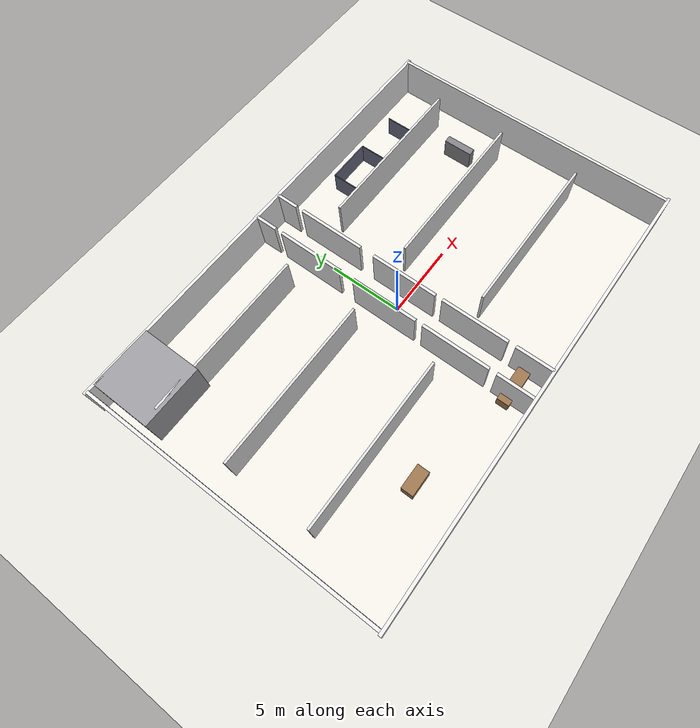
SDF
<?xml version="1.0"?>
<sdf version="1.11">
  <world name="office_floor">

    <!-- ── Physics ─────────────────────────────────────────────────────── -->
    <physics name="1ms" type="ignored">
      <max_step_size>0.001</max_step_size>
      <real_time_factor>1.0</real_time_factor>
    </physics>

    <!-- ── System plugins ──────────────────────────────────────────────── -->
    <plugin filename="gz-sim-physics-system"
            name="gz::sim::systems::Physics"/>
    <plugin filename="gz-sim-sensors-system"
            name="gz::sim::systems::Sensors">
      <render_engine>ogre2</render_engine>
    </plugin>
    <plugin filename="gz-sim-scene-broadcaster-system"
            name="gz::sim::systems::SceneBroadcaster"/>
    <plugin filename="gz-sim-user-commands-system"
            name="gz::sim::systems::UserCommands"/>
    <plugin filename="gz-sim-imu-system"
            name="gz::sim::systems::Imu"/>

    <!-- ── Lighting — office ceiling lights ────────────────────────────── -->
    <light name="ceiling_main" type="directional">
      <cast_shadows>false</cast_shadows>
      <pose>0 0 5 0 0 0</pose>
      <diffuse>0.95 0.95 0.95 1</diffuse>
      <specular>0.3 0.3 0.3 1</specular>
      <direction>0 0 -1</direction>
    </light>
    <light name="ceiling_north" type="directional">
      <cast_shadows>false</cast_shadows>
      <pose>0 8 5 0 0 0</pose>
      <diffuse>0.80 0.80 0.80 1</diffuse>
      <specular>0.1 0.1 0.1 1</specular>
      <direction>0 0 -1</direction>
    </light>
    <light name="ceiling_south" type="directional">
      <cast_shadows>false</cast_shadows>
      <pose>0 -8 5 0 0 0</pose>
      <diffuse>0.80 0.80 0.80 1</diffuse>
      <specular>0.1 0.1 0.1 1</specular>
      <direction>0 0 -1</direction>
    </light>

    <!-- ── Ground plane ─────────────────────────────────────────────────── -->
    <model name="ground_plane">
      <static>true</static>
      <link name="link">
        <collision name="collision">
          <geometry><plane><normal>0 0 1</normal><size>100 100</size></plane></geometry>
        </collision>
        <visual name="visual">
          <geometry><plane><normal>0 0 1</normal><size>100 100</size></plane></geometry>
          <material>
            <ambient>0.88 0.87 0.85 1</ambient>
            <diffuse>0.88 0.87 0.85 1</diffuse>
          </material>
        </visual>
      </link>
    </model>

    <!-- Office floor tile overlay (30 × 20 m, light-tile look) -->
    <model name="office_floor">
      <static>true</static>
      <pose>0 0 0.001 0 0 0</pose>
      <link name="link">
        <visual name="visual">
          <geometry><box><size>30 20 0.001</size></box></geometry>
          <material>
            <ambient>0.92 0.91 0.88 1</ambient>
            <diffuse>0.92 0.91 0.88 1</diffuse>
            <specular>0.08 0.08 0.08 1</specular>
          </material>
        </visual>
      </link>
    </model>

    <model name="wall_north">
      <static>true</static>
      <pose>0 10 1.4 0 0 0</pose>
      <link name="link">
        <collision name="collision">
          <geometry><box><size>30.4 0.2 2.8</size></box></geometry>
        </collision>
        <visual name="visual">
          <geometry><box><size>30.4 0.2 2.8</size></box></geometry>
          <material><ambient>0.90 0.90 0.90 1</ambient><diffuse>0.90 0.90 0.90 1</diffuse></material>
        </visual>
      </link>
    </model>

    <model name="wall_south">
      <static>true</static>
      <pose>0 -10 1.4 0 0 0</pose>
      <link name="link">
        <collision name="collision">
          <geometry><box><size>30.4 0.2 2.8</size></box></geometry>
        </collision>
        <visual name="visual">
          <geometry><box><size>30.4 0.2 2.8</size></box></geometry>
          <material><ambient>0.90 0.90 0.90 1</ambient><diffuse>0.90 0.90 0.90 1</diffuse></material>
        </visual>
      </link>
    </model>

    <model name="wall_east">
      <static>true</static>
      <pose>15 0 1.4 0 0 0</pose>
      <link name="link">
        <collision name="collision">
          <geometry><box><size>0.2 20.0 2.8</size></box></geometry>
        </collision>
        <visual name="visual">
          <geometry><box><size>0.2 20.0 2.8</size></box></geometry>
          <material><ambient>0.90 0.90 0.90 1</ambient><diffuse>0.90 0.90 0.90 1</diffuse></material>
        </visual>
      </link>
    </model>

    <model name="wall_west">
      <static>true</static>
      <pose>-15 0 1.4 0 0 0</pose>
      <link name="link">
        <collision name="collision">
          <geometry><box><size>0.2 20.0 2.8</size></box></geometry>
        </collision>
        <visual name="visual">
          <geometry><box><size>0.2 20.0 2.8</size></box></geometry>
          <material><ambient>0.90 0.90 0.90 1</ambient><diffuse>0.90 0.90 0.90 1</diffuse></material>
        </visual>
      </link>
    </model>

    <model name="west_hall_wall_1"><static>true</static><pose>-1.0 -8.75 1.4 0 0 0</pose>
      <link name="link">
        <collision name="collision"><geometry><box><size>0.2 2.5 2.8</size></box></geometry></collision>
        <visual name="visual"><geometry><box><size>0.2 2.5 2.8</size></box></geometry>
          <material><ambient>0.88 0.88 0.88 1</ambient><diffuse>0.88 0.88 0.88 1</diffuse></material></visual>
      </link>
    </model>
    <model name="west_hall_wall_2"><static>true</static><pose>-1.0 -4.75 1.4 0 0 0</pose>
      <link name="link">
        <collision name="collision"><geometry><box><size>0.2 4.5 2.8</size></box></geometry></collision>
        <visual name="visual"><geometry><box><size>0.2 4.5 2.8</size></box></geometry>
          <material><ambient>0.88 0.88 0.88 1</ambient><diffuse>0.88 0.88 0.88 1</diffuse></material></visual>
      </link>
    </model>
    <model name="west_hall_wall_3"><static>true</static><pose>-1.0 0.25 1.4 0 0 0</pose>
      <link name="link">
        <collision name="collision"><geometry><box><size>0.2 4.5 2.8</size></box></geometry></collision>
        <visual name="visual"><geometry><box><size>0.2 4.5 2.8</size></box></geometry>
          <material><ambient>0.88 0.88 0.88 1</ambient><diffuse>0.88 0.88 0.88 1</diffuse></material></visual>
      </link>
    </model>
    <model name="west_hall_wall_4"><static>true</static><pose>-1.0 5.75 1.4 0 0 0</pose>
      <link name="link">
        <collision name="collision"><geometry><box><size>0.2 4.5 2.8</size></box></geometry></collision>
        <visual name="visual"><geometry><box><size>0.2 4.5 2.8</size></box></geometry>
          <material><ambient>0.88 0.88 0.88 1</ambient><diffuse>0.88 0.88 0.88 1</diffuse></material></visual>
      </link>
    </model>
    <model name="west_hall_wall_5"><static>true</static><pose>-1.0 9.25 1.4 0 0 0</pose>
      <link name="link">
        <collision name="collision"><geometry><box><size>0.2 1.5 2.8</size></box></geometry></collision>
        <visual name="visual"><geometry><box><size>0.2 1.5 2.8</size></box></geometry>
          <material><ambient>0.88 0.88 0.88 1</ambient><diffuse>0.88 0.88 0.88 1</diffuse></material></visual>
      </link>
    </model>

    <!-- ── East hallway wall (mirrors west) ────────────────────────────── -->
    <model name="east_hall_wall_1"><static>true</static><pose>1.0 -8.75 1.4 0 0 0</pose>
      <link name="link">
        <collision name="collision"><geometry><box><size>0.2 2.5 2.8</size></box></geometry></collision>
        <visual name="visual"><geometry><box><size>0.2 2.5 2.8</size></box></geometry>
          <material><ambient>0.88 0.88 0.88 1</ambient><diffuse>0.88 0.88 0.88 1</diffuse></material></visual>
      </link>
    </model>
    <model name="east_hall_wall_2"><static>true</static><pose>1.0 -4.75 1.4 0 0 0</pose>
      <link name="link">
        <collision name="collision"><geometry><box><size>0.2 4.5 2.8</size></box></geometry></collision>
        <visual name="visual"><geometry><box><size>0.2 4.5 2.8</size></box></geometry>
          <material><ambient>0.88 0.88 0.88 1</ambient><diffuse>0.88 0.88 0.88 1</diffuse></material></visual>
      </link>
    </model>
    <model name="east_hall_wall_3"><static>true</static><pose>1.0 0.25 1.4 0 0 0</pose>
      <link name="link">
        <collision name="collision"><geometry><box><size>0.2 4.5 2.8</size></box></geometry></collision>
        <visual name="visual"><geometry><box><size>0.2 4.5 2.8</size></box></geometry>
          <material><ambient>0.88 0.88 0.88 1</ambient><diffuse>0.88 0.88 0.88 1</diffuse></material></visual>
      </link>
    </model>
    <model name="east_hall_wall_4"><static>true</static><pose>1.0 5.75 1.4 0 0 0</pose>
      <link name="link">
        <collision name="collision"><geometry><box><size>0.2 4.5 2.8</size></box></geometry></collision>
        <visual name="visual"><geometry><box><size>0.2 4.5 2.8</size></box></geometry>
          <material><ambient>0.88 0.88 0.88 1</ambient><diffuse>0.88 0.88 0.88 1</diffuse></material></visual>
      </link>
    </model>
    <model name="east_hall_wall_5"><static>true</static><pose>1.0 9.25 1.4 0 0 0</pose>
      <link name="link">
        <collision name="collision"><geometry><box><size>0.2 1.5 2.8</size></box></geometry></collision>
        <visual name="visual"><geometry><box><size>0.2 1.5 2.8</size></box></geometry>
          <material><ambient>0.88 0.88 0.88 1</ambient><diffuse>0.88 0.88 0.88 1</diffuse></material></visual>
      </link>
    </model>

    <!-- West wing room partitions — between perimeter (x=-15) and hallway (x=-1) -->
    <!-- Partition walls do NOT span all 14 m; they stop 1.5 m short of perimeter -->
    <!-- to leave aisle access near perimeter walls (design choice) -->
    <model name="west_partition_1"><static>true</static><pose>-8 -4.3 1.4 0 0 0</pose>
      <link name="link">
        <collision name="collision"><geometry><box><size>11.0 0.15 2.8</size></box></geometry></collision>
        <visual name="visual"><geometry><box><size>11.0 0.15 2.8</size></box></geometry>
          <material><ambient>0.85 0.85 0.85 1</ambient><diffuse>0.85 0.85 0.85 1</diffuse></material></visual>
      </link>
    </model>
    <model name="west_partition_2"><static>true</static><pose>-8 1.3 1.4 0 0 0</pose>
      <link name="link">
        <collision name="collision"><geometry><box><size>11.0 0.15 2.8</size></box></geometry></collision>
        <visual name="visual"><geometry><box><size>11.0 0.15 2.8</size></box></geometry>
          <material><ambient>0.85 0.85 0.85 1</ambient><diffuse>0.85 0.85 0.85 1</diffuse></material></visual>
      </link>
    </model>
    <model name="west_partition_3"><static>true</static><pose>-8 6.3 1.4 0 0 0</pose>
      <link name="link">
        <collision name="collision"><geometry><box><size>11.0 0.15 2.8</size></box></geometry></collision>
        <visual name="visual"><geometry><box><size>11.0 0.15 2.8</size></box></geometry>
          <material><ambient>0.85 0.85 0.85 1</ambient><diffuse>0.85 0.85 0.85 1</diffuse></material></visual>
      </link>
    </model>

    <!-- East wing room partitions (mirrored at x=+8) -->
    <model name="east_partition_1"><static>true</static><pose>8 -4.3 1.4 0 0 0</pose>
      <link name="link">
        <collision name="collision"><geometry><box><size>11.0 0.15 2.8</size></box></geometry></collision>
        <visual name="visual"><geometry><box><size>11.0 0.15 2.8</size></box></geometry>
          <material><ambient>0.85 0.85 0.85 1</ambient><diffuse>0.85 0.85 0.85 1</diffuse></material></visual>
      </link>
    </model>
    <model name="east_partition_2"><static>true</static><pose>8 1.3 1.4 0 0 0</pose>
      <link name="link">
        <collision name="collision"><geometry><box><size>11.0 0.15 2.8</size></box></geometry></collision>
        <visual name="visual"><geometry><box><size>11.0 0.15 2.8</size></box></geometry>
          <material><ambient>0.85 0.85 0.85 1</ambient><diffuse>0.85 0.85 0.85 1</diffuse></material></visual>
      </link>
    </model>
    <model name="east_partition_3"><static>true</static><pose>8 6.3 1.4 0 0 0</pose>
      <link name="link">
        <collision name="collision"><geometry><box><size>11.0 0.15 2.8</size></box></geometry></collision>
        <visual name="visual"><geometry><box><size>11.0 0.15 2.8</size></box></geometry>
          <material><ambient>0.85 0.85 0.85 1</ambient><diffuse>0.85 0.85 0.85 1</diffuse></material></visual>
      </link>
    </model>

    <!-- ════════════════════════════════════════════════════════════════════
         FURNITURE OBSTACLES
         ════════════════════════════════════════════════════════════════════ -->

    <!-- Reception desk (south end, y = -8.5) -->
    <model name="reception_desk">
      <static>true</static>
      <pose>0 -8.5 0.4 0 0 0</pose>
      <link name="link">
        <collision name="collision"><geometry><box><size>3.0 0.8 0.8</size></box></geometry></collision>
        <visual name="visual"><geometry><box><size>3.0 0.8 0.8</size></box></geometry>
          <material><ambient>0.60 0.45 0.30 1</ambient><diffuse>0.60 0.45 0.30 1</diffuse></material></visual>
      </link>
    </model>

    <!-- Cubicle dividers — north open area (east side, near y=7-9) -->
    <model name="cubicle_div_1"><static>true</static><pose>5.0 7.5 0.75 0 0 0</pose>
      <link name="link">
        <collision name="collision"><geometry><box><size>0.06 2.5 1.5</size></box></geometry></collision>
        <visual name="visual"><geometry><box><size>0.06 2.5 1.5</size></box></geometry>
          <material><ambient>0.40 0.42 0.50 1</ambient><diffuse>0.40 0.42 0.50 1</diffuse></material></visual>
      </link>
    </model>
    <model name="cubicle_div_2"><static>true</static><pose>8.0 7.5 0.75 0 0 0</pose>
      <link name="link">
        <collision name="collision"><geometry><box><size>0.06 2.5 1.5</size></box></geometry></collision>
        <visual name="visual"><geometry><box><size>0.06 2.5 1.5</size></box></geometry>
          <material><ambient>0.40 0.42 0.50 1</ambient><diffuse>0.40 0.42 0.50 1</diffuse></material></visual>
      </link>
    </model>
    <model name="cubicle_div_3"><static>true</static><pose>11.0 7.5 0.75 0 0 0</pose>
      <link name="link">
        <collision name="collision"><geometry><box><size>0.06 2.5 1.5</size></box></geometry></collision>
        <visual name="visual"><geometry><box><size>0.06 2.5 1.5</size></box></geometry>
          <material><ambient>0.40 0.42 0.50 1</ambient><diffuse>0.40 0.42 0.50 1</diffuse></material></visual>
      </link>
    </model>
    <!-- Cross dividers for cubicle bays -->
    <model name="cubicle_div_h1"><static>true</static><pose>6.5 8.75 0.75 0 0 0</pose>
      <link name="link">
        <collision name="collision"><geometry><box><size>3.0 0.06 1.5</size></box></geometry></collision>
        <visual name="visual"><geometry><box><size>3.0 0.06 1.5</size></box></geometry>
          <material><ambient>0.40 0.42 0.50 1</ambient><diffuse>0.40 0.42 0.50 1</diffuse></material></visual>
      </link>
    </model>

    <!-- Stairwell / lift shaft — NW corner -->
    <model name="lift_shaft">
      <static>true</static>
      <pose>-12.5 8.0 1.4 0 0 0</pose>
      <link name="link">
        <collision name="collision">
          <geometry><box><size>4.0 4.0 2.8</size></box></geometry>
        </collision>
        <visual name="visual">
          <geometry><box><size>4.0 4.0 2.8</size></box></geometry>
          <material><ambient>0.60 0.60 0.62 1</ambient><diffuse>0.60 0.60 0.62 1</diffuse></material>
        </visual>
      </link>
    </model>

    <!-- Desk in west office room (y=-7 to -4.3, x=-15 to -1) -->
    <model name="desk_w1"><static>true</static><pose>-8 -7.0 0.4 0 0 0</pose>
      <link name="link">
        <collision name="collision"><geometry><box><size>1.6 0.8 0.8</size></box></geometry></collision>
        <visual name="visual"><geometry><box><size>1.6 0.8 0.8</size></box></geometry>
          <material><ambient>0.60 0.45 0.30 1</ambient><diffuse>0.60 0.45 0.30 1</diffuse></material></visual>
      </link>
    </model>

    <!-- Filing cabinet cluster in east office room -->
    <model name="filing_cabinets"><static>true</static><pose>12 3.5 0.7 0 0 0</pose>
      <link name="link">
        <collision name="collision"><geometry><box><size>0.5 2.0 1.4</size></box></geometry></collision>
        <visual name="visual"><geometry><box><size>0.5 2.0 1.4</size></box></geometry>
          <material><ambient>0.50 0.50 0.52 1</ambient><diffuse>0.50 0.50 0.52 1</diffuse></material></visual>
      </link>
    </model>

  </world>
</sdf>
